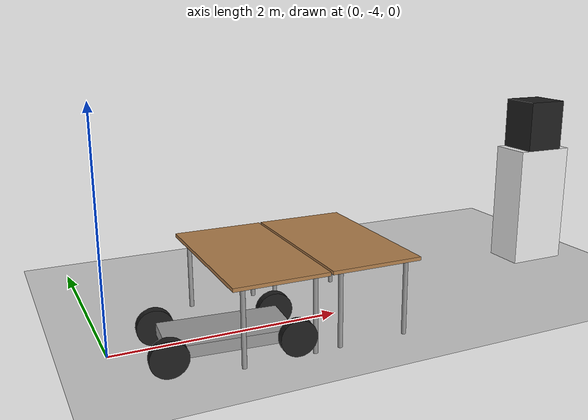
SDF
<sdf version="1.6">
 <world name="default">
  <model name="ground_plane">
   <static>1</static>
   <link name="link">
    <collision name="collision">
     <geometry><plane><normal>0 0 1</normal><size>100 100</size></plane></geometry>
     <surface>
      <contact><collide_bitmask>65535</collide_bitmask></contact>
      <friction><ode><mu>100</mu><mu2>50</mu2></ode></friction>
     </surface>
    </collision>
    <visual name="visual">
     <cast_shadows>0</cast_shadows>
     <geometry><plane><normal>0 0 1</normal><size>100 100</size></plane></geometry>
     <material>
      <script><uri>file://media/materials/scripts/gazebo.material</uri><name>Gazebo/Grey</name></script>
     </material>
    </visual>
   </link>
  </model>
  <model name="table_3">
   <link name="link">
    <pose>0 0 0 0 -0 1.57</pose>
    <visual name="visual1">
     <pose>0 0 0.67 0 -0 0</pose>
     <geometry><box><size>1.5 0.8 0.03</size></box></geometry>
     <material>
      <script><uri>file://media/materials/scripts/gazebo.material</uri><name>Gazebo/Wood</name></script>
     </material>
    </visual>
    <visual name="front_left_leg">
     <pose>0.68 0.3 0.335 0 -0 0</pose>
     <geometry><cylinder><radius>0.02</radius><length>0.67</length></cylinder></geometry>
     <material>
      <script><uri>file://media/materials/scripts/gazebo.material</uri><name>Gazebo/Grey</name></script>
     </material>
    </visual>
    <visual name="front_right_leg">
     <pose>0.68 -0.3 0.335 0 -0 0</pose>
     <geometry><cylinder><radius>0.02</radius><length>0.67</length></cylinder></geometry>
     <material>
      <script><uri>file://media/materials/scripts/gazebo.material</uri><name>Gazebo/Grey</name></script>
     </material>
    </visual>
    <visual name="back_right_leg">
     <pose>-0.68 -0.3 0.335 0 -0 0</pose>
     <geometry><cylinder><radius>0.02</radius><length>0.67</length></cylinder></geometry>
     <material>
      <script><uri>file://media/materials/scripts/gazebo.material</uri><name>Gazebo/Grey</name></script>
     </material>
    </visual>
    <visual name="back_left_leg">
     <pose>-0.68 0.3 0.335 0 -0 0</pose>
     <geometry><cylinder><radius>0.02</radius><length>0.67</length></cylinder></geometry>
     <material>
      <script><uri>file://media/materials/scripts/gazebo.material</uri><name>Gazebo/Grey</name></script>
     </material>
    </visual>
    <collision name="surface">
     <pose>0 0 0.67 0 -0 0</pose>
     <geometry><box><size>1.5 0.8 0.03</size></box></geometry>
     <surface>
      <friction>
       <ode><mu>0.6</mu><mu2>0.6</mu2><fdir1>0 0 0</fdir1><slip1>0</slip1><slip2>0</slip2></ode>
       <torsional>
        <coefficient>1</coefficient>
        <patch_radius>0</patch_radius>
        <surface_radius>0</surface_radius>
        <use_patch_radius>1</use_patch_radius>
        <ode><slip>0</slip></ode>
       </torsional>
      </friction>
      <bounce><restitution_coefficient>0</restitution_coefficient><threshold>1e+06</threshold></bounce>
      <contact>
       <collide_without_contact>0</collide_without_contact>
       <collide_without_contact_bitmask>1</collide_without_contact_bitmask>
       <collide_bitmask>1</collide_bitmask>
       <ode>
        <soft_cfm>0</soft_cfm>
        <soft_erp>0.2</soft_erp>
        <kp>1e+13</kp>
        <kd>1</kd>
        <max_vel>0.01</max_vel>
        <min_depth>0</min_depth>
       </ode>
       <bullet>
        <split_impulse>1</split_impulse>
        <split_impulse_penetration_threshold>-0.01</split_impulse_penetration_threshold>
        <soft_cfm>0</soft_cfm>
        <soft_erp>0.2</soft_erp>
        <kp>1e+13</kp>
        <kd>1</kd>
       </bullet>
      </contact>
     </surface>
    </collision>
    <collision name="front_left_leg">
     <pose>0.68 0.3 0.335 0 -0 0</pose>
     <geometry><cylinder><radius>0.02</radius><length>0.67</length></cylinder></geometry>
     <surface>
      <friction>
       <ode><mu>1</mu><mu2>1</mu2><fdir1>0 0 0</fdir1><slip1>0</slip1><slip2>0</slip2></ode>
       <torsional>
        <coefficient>1</coefficient>
        <patch_radius>0</patch_radius>
        <surface_radius>0</surface_radius>
        <use_patch_radius>1</use_patch_radius>
        <ode><slip>0</slip></ode>
       </torsional>
      </friction>
      <bounce><restitution_coefficient>0</restitution_coefficient><threshold>1e+06</threshold></bounce>
      <contact>
       <collide_without_contact>0</collide_without_contact>
       <collide_without_contact_bitmask>1</collide_without_contact_bitmask>
       <collide_bitmask>1</collide_bitmask>
       <ode>
        <soft_cfm>0</soft_cfm>
        <soft_erp>0.2</soft_erp>
        <kp>1e+13</kp>
        <kd>1</kd>
        <max_vel>0.01</max_vel>
        <min_depth>0</min_depth>
       </ode>
       <bullet>
        <split_impulse>1</split_impulse>
        <split_impulse_penetration_threshold>-0.01</split_impulse_penetration_threshold>
        <soft_cfm>0</soft_cfm>
        <soft_erp>0.2</soft_erp>
        <kp>1e+13</kp>
        <kd>1</kd>
       </bullet>
      </contact>
     </surface>
    </collision>
    <collision name="front_right_leg">
     <pose>0.68 -0.3 0.335 0 -0 0</pose>
     <geometry><cylinder><radius>0.02</radius><length>0.67</length></cylinder></geometry>
     <surface>
      <friction>
       <ode><mu>1</mu><mu2>1</mu2><fdir1>0 0 0</fdir1><slip1>0</slip1><slip2>0</slip2></ode>
       <torsional>
        <coefficient>1</coefficient>
        <patch_radius>0</patch_radius>
        <surface_radius>0</surface_radius>
        <use_patch_radius>1</use_patch_radius>
        <ode><slip>0</slip></ode>
       </torsional>
      </friction>
      <bounce><restitution_coefficient>0</restitution_coefficient><threshold>1e+06</threshold></bounce>
      <contact>
       <collide_without_contact>0</collide_without_contact>
       <collide_without_contact_bitmask>1</collide_without_contact_bitmask>
       <collide_bitmask>1</collide_bitmask>
       <ode>
        <soft_cfm>0</soft_cfm>
        <soft_erp>0.2</soft_erp>
        <kp>1e+13</kp>
        <kd>1</kd>
        <max_vel>0.01</max_vel>
        <min_depth>0</min_depth>
       </ode>
       <bullet>
        <split_impulse>1</split_impulse>
        <split_impulse_penetration_threshold>-0.01</split_impulse_penetration_threshold>
        <soft_cfm>0</soft_cfm>
        <soft_erp>0.2</soft_erp>
        <kp>1e+13</kp>
        <kd>1</kd>
       </bullet>
      </contact>
     </surface>
    </collision>
    <collision name="back_right_leg">
     <pose>-0.68 -0.3 0.335 0 -0 0</pose>
     <geometry><cylinder><radius>0.02</radius><length>0.67</length></cylinder></geometry>
     <surface>
      <friction>
       <ode><mu>1</mu><mu2>1</mu2><fdir1>0 0 0</fdir1><slip1>0</slip1><slip2>0</slip2></ode>
       <torsional>
        <coefficient>1</coefficient>
        <patch_radius>0</patch_radius>
        <surface_radius>0</surface_radius>
        <use_patch_radius>1</use_patch_radius>
        <ode><slip>0</slip></ode>
       </torsional>
      </friction>
      <bounce><restitution_coefficient>0</restitution_coefficient><threshold>1e+06</threshold></bounce>
      <contact>
       <collide_without_contact>0</collide_without_contact>
       <collide_without_contact_bitmask>1</collide_without_contact_bitmask>
       <collide_bitmask>1</collide_bitmask>
       <ode>
        <soft_cfm>0</soft_cfm>
        <soft_erp>0.2</soft_erp>
        <kp>1e+13</kp>
        <kd>1</kd>
        <max_vel>0.01</max_vel>
        <min_depth>0</min_depth>
       </ode>
       <bullet>
        <split_impulse>1</split_impulse>
        <split_impulse_penetration_threshold>-0.01</split_impulse_penetration_threshold>
        <soft_cfm>0</soft_cfm>
        <soft_erp>0.2</soft_erp>
        <kp>1e+13</kp>
        <kd>1</kd>
       </bullet>
      </contact>
     </surface>
    </collision>
    <collision name="back_left_leg">
     <pose>-0.68 0.3 0.335 0 -0 0</pose>
     <geometry><cylinder><radius>0.02</radius><length>0.67</length></cylinder></geometry>
     <surface>
      <friction>
       <ode><mu>1</mu><mu2>1</mu2><fdir1>0 0 0</fdir1><slip1>0</slip1><slip2>0</slip2></ode>
       <torsional>
        <coefficient>1</coefficient>
        <patch_radius>0</patch_radius>
        <surface_radius>0</surface_radius>
        <use_patch_radius>1</use_patch_radius>
        <ode><slip>0</slip></ode>
       </torsional>
      </friction>
      <bounce><restitution_coefficient>0</restitution_coefficient><threshold>1e+06</threshold></bounce>
      <contact>
       <collide_without_contact>0</collide_without_contact>
       <collide_without_contact_bitmask>1</collide_without_contact_bitmask>
       <collide_bitmask>1</collide_bitmask>
       <ode>
        <soft_cfm>0</soft_cfm>
        <soft_erp>0.2</soft_erp>
        <kp>1e+13</kp>
        <kd>1</kd>
        <max_vel>0.01</max_vel>
        <min_depth>0</min_depth>
       </ode>
       <bullet>
        <split_impulse>1</split_impulse>
        <split_impulse_penetration_threshold>-0.01</split_impulse_penetration_threshold>
        <soft_cfm>0</soft_cfm>
        <soft_erp>0.2</soft_erp>
        <kp>1e+13</kp>
        <kd>1</kd>
       </bullet>
      </contact>
     </surface>
    </collision>
   </link>
   <static>1</static>
   <pose>1.20778 -3.96105 0 0 -0 0</pose>
  </model>
  <model name="table_4">
   <link name="link">
    <pose>0 0 0 0 -0 1.57</pose>
    <visual name="visual1">
     <pose>0 0 0.67 0 -0 0</pose>
     <geometry><box><size>1.5 0.8 0.03</size></box></geometry>
     <material>
      <script><uri>file://media/materials/scripts/gazebo.material</uri><name>Gazebo/Wood</name></script>
     </material>
    </visual>
    <visual name="front_left_leg">
     <pose>0.68 0.3 0.335 0 -0 0</pose>
     <geometry><cylinder><radius>0.02</radius><length>0.67</length></cylinder></geometry>
     <material>
      <script><uri>file://media/materials/scripts/gazebo.material</uri><name>Gazebo/Grey</name></script>
     </material>
    </visual>
    <visual name="front_right_leg">
     <pose>0.68 -0.3 0.335 0 -0 0</pose>
     <geometry><cylinder><radius>0.02</radius><length>0.67</length></cylinder></geometry>
     <material>
      <script><uri>file://media/materials/scripts/gazebo.material</uri><name>Gazebo/Grey</name></script>
     </material>
    </visual>
    <visual name="back_right_leg">
     <pose>-0.68 -0.3 0.335 0 -0 0</pose>
     <geometry><cylinder><radius>0.02</radius><length>0.67</length></cylinder></geometry>
     <material>
      <script><uri>file://media/materials/scripts/gazebo.material</uri><name>Gazebo/Grey</name></script>
     </material>
    </visual>
    <visual name="back_left_leg">
     <pose>-0.68 0.3 0.335 0 -0 0</pose>
     <geometry><cylinder><radius>0.02</radius><length>0.67</length></cylinder></geometry>
     <material>
      <script><uri>file://media/materials/scripts/gazebo.material</uri><name>Gazebo/Grey</name></script>
     </material>
    </visual>
    <collision name="surface">
     <pose>0 0 0.67 0 -0 0</pose>
     <geometry><box><size>1.5 0.8 0.03</size></box></geometry>
     <surface>
      <friction>
       <ode><mu>0.6</mu><mu2>0.6</mu2><fdir1>0 0 0</fdir1><slip1>0</slip1><slip2>0</slip2></ode>
       <torsional>
        <coefficient>1</coefficient>
        <patch_radius>0</patch_radius>
        <surface_radius>0</surface_radius>
        <use_patch_radius>1</use_patch_radius>
        <ode><slip>0</slip></ode>
       </torsional>
      </friction>
      <bounce><restitution_coefficient>0</restitution_coefficient><threshold>1e+06</threshold></bounce>
      <contact>
       <collide_without_contact>0</collide_without_contact>
       <collide_without_contact_bitmask>1</collide_without_contact_bitmask>
       <collide_bitmask>1</collide_bitmask>
       <ode>
        <soft_cfm>0</soft_cfm>
        <soft_erp>0.2</soft_erp>
        <kp>1e+13</kp>
        <kd>1</kd>
        <max_vel>0.01</max_vel>
        <min_depth>0</min_depth>
       </ode>
       <bullet>
        <split_impulse>1</split_impulse>
        <split_impulse_penetration_threshold>-0.01</split_impulse_penetration_threshold>
        <soft_cfm>0</soft_cfm>
        <soft_erp>0.2</soft_erp>
        <kp>1e+13</kp>
        <kd>1</kd>
       </bullet>
      </contact>
     </surface>
    </collision>
    <collision name="front_left_leg">
     <pose>0.68 0.3 0.335 0 -0 0</pose>
     <geometry><cylinder><radius>0.02</radius><length>0.67</length></cylinder></geometry>
     <surface>
      <friction>
       <ode><mu>1</mu><mu2>1</mu2><fdir1>0 0 0</fdir1><slip1>0</slip1><slip2>0</slip2></ode>
       <torsional>
        <coefficient>1</coefficient>
        <patch_radius>0</patch_radius>
        <surface_radius>0</surface_radius>
        <use_patch_radius>1</use_patch_radius>
        <ode><slip>0</slip></ode>
       </torsional>
      </friction>
      <bounce><restitution_coefficient>0</restitution_coefficient><threshold>1e+06</threshold></bounce>
      <contact>
       <collide_without_contact>0</collide_without_contact>
       <collide_without_contact_bitmask>1</collide_without_contact_bitmask>
       <collide_bitmask>1</collide_bitmask>
       <ode>
        <soft_cfm>0</soft_cfm>
        <soft_erp>0.2</soft_erp>
        <kp>1e+13</kp>
        <kd>1</kd>
        <max_vel>0.01</max_vel>
        <min_depth>0</min_depth>
       </ode>
       <bullet>
        <split_impulse>1</split_impulse>
        <split_impulse_penetration_threshold>-0.01</split_impulse_penetration_threshold>
        <soft_cfm>0</soft_cfm>
        <soft_erp>0.2</soft_erp>
        <kp>1e+13</kp>
        <kd>1</kd>
       </bullet>
      </contact>
     </surface>
    </collision>
    <collision name="front_right_leg">
     <pose>0.68 -0.3 0.335 0 -0 0</pose>
     <geometry><cylinder><radius>0.02</radius><length>0.67</length></cylinder></geometry>
     <surface>
      <friction>
       <ode><mu>1</mu><mu2>1</mu2><fdir1>0 0 0</fdir1><slip1>0</slip1><slip2>0</slip2></ode>
       <torsional>
        <coefficient>1</coefficient>
        <patch_radius>0</patch_radius>
        <surface_radius>0</surface_radius>
        <use_patch_radius>1</use_patch_radius>
        <ode><slip>0</slip></ode>
       </torsional>
      </friction>
      <bounce><restitution_coefficient>0</restitution_coefficient><threshold>1e+06</threshold></bounce>
      <contact>
       <collide_without_contact>0</collide_without_contact>
       <collide_without_contact_bitmask>1</collide_without_contact_bitmask>
       <collide_bitmask>1</collide_bitmask>
       <ode>
        <soft_cfm>0</soft_cfm>
        <soft_erp>0.2</soft_erp>
        <kp>1e+13</kp>
        <kd>1</kd>
        <max_vel>0.01</max_vel>
        <min_depth>0</min_depth>
       </ode>
       <bullet>
        <split_impulse>1</split_impulse>
        <split_impulse_penetration_threshold>-0.01</split_impulse_penetration_threshold>
        <soft_cfm>0</soft_cfm>
        <soft_erp>0.2</soft_erp>
        <kp>1e+13</kp>
        <kd>1</kd>
       </bullet>
      </contact>
     </surface>
    </collision>
    <collision name="back_right_leg">
     <pose>-0.68 -0.3 0.335 0 -0 0</pose>
     <geometry><cylinder><radius>0.02</radius><length>0.67</length></cylinder></geometry>
     <surface>
      <friction>
       <ode><mu>1</mu><mu2>1</mu2><fdir1>0 0 0</fdir1><slip1>0</slip1><slip2>0</slip2></ode>
       <torsional>
        <coefficient>1</coefficient>
        <patch_radius>0</patch_radius>
        <surface_radius>0</surface_radius>
        <use_patch_radius>1</use_patch_radius>
        <ode><slip>0</slip></ode>
       </torsional>
      </friction>
      <bounce><restitution_coefficient>0</restitution_coefficient><threshold>1e+06</threshold></bounce>
      <contact>
       <collide_without_contact>0</collide_without_contact>
       <collide_without_contact_bitmask>1</collide_without_contact_bitmask>
       <collide_bitmask>1</collide_bitmask>
       <ode>
        <soft_cfm>0</soft_cfm>
        <soft_erp>0.2</soft_erp>
        <kp>1e+13</kp>
        <kd>1</kd>
        <max_vel>0.01</max_vel>
        <min_depth>0</min_depth>
       </ode>
       <bullet>
        <split_impulse>1</split_impulse>
        <split_impulse_penetration_threshold>-0.01</split_impulse_penetration_threshold>
        <soft_cfm>0</soft_cfm>
        <soft_erp>0.2</soft_erp>
        <kp>1e+13</kp>
        <kd>1</kd>
       </bullet>
      </contact>
     </surface>
    </collision>
    <collision name="back_left_leg">
     <pose>-0.68 0.3 0.335 0 -0 0</pose>
     <geometry><cylinder><radius>0.02</radius><length>0.67</length></cylinder></geometry>
     <surface>
      <friction>
       <ode><mu>1</mu><mu2>1</mu2><fdir1>0 0 0</fdir1><slip1>0</slip1><slip2>0</slip2></ode>
       <torsional>
        <coefficient>1</coefficient>
        <patch_radius>0</patch_radius>
        <surface_radius>0</surface_radius>
        <use_patch_radius>1</use_patch_radius>
        <ode><slip>0</slip></ode>
       </torsional>
      </friction>
      <bounce><restitution_coefficient>0</restitution_coefficient><threshold>1e+06</threshold></bounce>
      <contact>
       <collide_without_contact>0</collide_without_contact>
       <collide_without_contact_bitmask>1</collide_without_contact_bitmask>
       <collide_bitmask>1</collide_bitmask>
       <ode>
        <soft_cfm>0</soft_cfm>
        <soft_erp>0.2</soft_erp>
        <kp>1e+13</kp>
        <kd>1</kd>
        <max_vel>0.01</max_vel>
        <min_depth>0</min_depth>
       </ode>
       <bullet>
        <split_impulse>1</split_impulse>
        <split_impulse_penetration_threshold>-0.01</split_impulse_penetration_threshold>
        <soft_cfm>0</soft_cfm>
        <soft_erp>0.2</soft_erp>
        <kp>1e+13</kp>
        <kd>1</kd>
       </bullet>
      </contact>
     </surface>
    </collision>
   </link>
   <static>1</static>
   <pose>2.03267 -3.95472 0 0 -0 0</pose>
  </model>
  <model name="guizi_1_1">
   <link name="link">
    <inertial>
     <mass>1</mass>
     <inertia>
      <ixx>0.166667</ixx>
      <ixy>0</ixy>
      <ixz>0</ixz>
      <iyy>0.166667</iyy>
      <iyz>0</iyz>
      <izz>0.166667</izz>
     </inertia>
    </inertial>
    <visual name="visual">
     <geometry><box><size>0.4 0.6 1.2</size></box></geometry>
     <material>
      <script><name>Gazebo/White</name><uri>file://media/materials/scripts/gazebo.material</uri></script>
     </material>
     <pose>0 0 0.6 0 -0 1.57</pose>
    </visual>
    <collision name="collision">
     <pose>0 0 0.6 0 -0 1.57</pose>
     <geometry><box><size>0.4 0.6 1.2</size></box></geometry>
     <surface>
      <friction>
       <ode><mu>1</mu><mu2>1</mu2><fdir1>0 0 0</fdir1><slip1>0</slip1><slip2>0</slip2></ode>
       <torsional>
        <coefficient>1</coefficient>
        <patch_radius>0</patch_radius>
        <surface_radius>0</surface_radius>
        <use_patch_radius>1</use_patch_radius>
        <ode><slip>0</slip></ode>
       </torsional>
      </friction>
      <bounce><restitution_coefficient>0</restitution_coefficient><threshold>1e+06</threshold></bounce>
      <contact>
       <collide_without_contact>0</collide_without_contact>
       <collide_without_contact_bitmask>1</collide_without_contact_bitmask>
       <collide_bitmask>1</collide_bitmask>
       <ode>
        <soft_cfm>0</soft_cfm>
        <soft_erp>0.2</soft_erp>
        <kp>1e+13</kp>
        <kd>1</kd>
        <max_vel>0.01</max_vel>
        <min_depth>0</min_depth>
       </ode>
       <bullet>
        <split_impulse>1</split_impulse>
        <split_impulse_penetration_threshold>-0.01</split_impulse_penetration_threshold>
        <soft_cfm>0</soft_cfm>
        <soft_erp>0.2</soft_erp>
        <kp>1e+13</kp>
        <kd>1</kd>
       </bullet>
      </contact>
     </surface>
    </collision>
   </link>
   <static>0</static>
   <pose>4.64781 -3.45604 -0 0 -0 -0.000414</pose>
  </model>
  <model name="guizi_1">
   <link name="link">
    <inertial>
     <mass>1</mass>
     <inertia>
      <ixx>0.166667</ixx>
      <ixy>0</ixy>
      <ixz>0</ixz>
      <iyy>0.166667</iyy>
      <iyz>0</iyz>
      <izz>0.166667</izz>
     </inertia>
    </inertial>
    <visual name="visual">
     <geometry><box><size>0.4 0.4 0.5</size></box></geometry>
     <material>
      <script><name>Gazebo/Black</name><uri>file://media/materials/scripts/gazebo.material</uri></script>
     </material>
     <pose>0 0 1.45 0 -0 1.57</pose>
    </visual>
    <collision name="collision">
     <pose>0 0 1.45 0 -0 1.57</pose>
     <geometry><box><size>0.4 0.4 0.5</size></box></geometry>
     <surface>
      <friction>
       <ode><mu>1</mu><mu2>1</mu2><fdir1>0 0 0</fdir1><slip1>0</slip1><slip2>0</slip2></ode>
       <torsional>
        <coefficient>1</coefficient>
        <patch_radius>0</patch_radius>
        <surface_radius>0</surface_radius>
        <use_patch_radius>1</use_patch_radius>
        <ode><slip>0</slip></ode>
       </torsional>
      </friction>
      <bounce><restitution_coefficient>0</restitution_coefficient><threshold>1e+06</threshold></bounce>
      <contact>
       <collide_without_contact>0</collide_without_contact>
       <collide_without_contact_bitmask>1</collide_without_contact_bitmask>
       <collide_bitmask>1</collide_bitmask>
       <ode>
        <soft_cfm>0</soft_cfm>
        <soft_erp>0.2</soft_erp>
        <kp>1e+13</kp>
        <kd>1</kd>
        <max_vel>0.01</max_vel>
        <min_depth>0</min_depth>
       </ode>
       <bullet>
        <split_impulse>1</split_impulse>
        <split_impulse_penetration_threshold>-0.01</split_impulse_penetration_threshold>
        <soft_cfm>0</soft_cfm>
        <soft_erp>0.2</soft_erp>
        <kp>1e+13</kp>
        <kd>1</kd>
       </bullet>
      </contact>
     </surface>
    </collision>
   </link>
   <static>0</static>
   <pose>4.63387 -3.45985 2e-06 -6e-06 5e-06 -0.016774</pose>
  </model>
  <model name="cart_soft_suspension">
   <link name="chassis">
    <pose>0 0 0.15 0 -0 0</pose>
    <inertial>
     <pose>0.1 0 0 0 -0 0</pose>
     <mass>10</mass>
     <inertia>
      <ixx>0.216667</ixx>
      <iyy>0.841667</iyy>
      <izz>1.04167</izz>
      <ixy>0</ixy>
      <ixz>0</ixz>
      <iyz>0</iyz>
     </inertia>
    </inertial>
    <collision name="collision"><geometry><box><size>1 0.5 0.1</size></box></geometry></collision>
    <visual name="visual">
     <geometry><box><size>1 0.5 0.1</size></box></geometry>
     <material>
      <script><uri>file://media/materials/scripts/gazebo.material</uri><name>Gazebo/Grey</name></script>
     </material>
    </visual>
   </link>
   <link name="susp_front_right">
    <pose>0.5 -0.298 0.15 0 -0 0</pose>
    <inertial>
     <mass>0.5</mass>
     <inertia>
      <ixx>0.000208333</ixx>
      <iyy>0.000208333</iyy>
      <izz>0.000208333</izz>
      <ixy>0</ixy>
      <ixz>0</ixz>
      <iyz>0</iyz>
     </inertia>
    </inertial>
    <collision name="collision"><geometry><box><size>0.05 0.05 0.05</size></box></geometry></collision>
    <visual name="visual">
     <geometry><box><size>0.05 0.05 0.05</size></box></geometry>
     <material>
      <script><uri>file://media/materials/scripts/gazebo.material</uri><name>Gazebo/Black</name></script>
     </material>
    </visual>
   </link>
   <joint name="susp_front_right_prismatic" type="prismatic">
    <parent>chassis</parent>
    <child>susp_front_right</child>
    <axis>
     <xyz>0 0 -1</xyz>
     <limit><lower>-0.0375</lower><upper>0.0375</upper></limit>
     <dynamics>
      <damping>100</damping>
      <spring_stiffness>2500</spring_stiffness>
      <spring_reference>0.05</spring_reference>
     </dynamics>
     <use_parent_model_frame>0</use_parent_model_frame>
    </axis>
    <physics>
     <ode><implicit_spring_damper>1</implicit_spring_damper><limit><cfm>0</cfm><erp>0.2</erp></limit></ode>
    </physics>
   </joint>
   <link name="wheel_front_right">
    <pose>0.5 -0.298 0.15 -1.5708 0 0</pose>
    <inertial>
     <mass>0.5</mass>
     <inertia>
      <ixx>0.00307917</ixx>
      <iyy>0.00307917</iyy>
      <izz>0.005625</izz>
      <ixy>0</ixy>
      <ixz>0</ixz>
      <iyz>0</iyz>
     </inertia>
    </inertial>
    <collision name="collision">
     <geometry><cylinder><radius>0.15</radius><length>0.08</length></cylinder></geometry>
    </collision>
    <visual name="visual">
     <geometry><cylinder><radius>0.15</radius><length>0.08</length></cylinder></geometry>
     <material>
      <script><uri>file://media/materials/scripts/gazebo.material</uri><name>Gazebo/Black</name></script>
     </material>
    </visual>
   </link>
   <joint name="wheel_front_right_spin" type="revolute">
    <parent>susp_front_right</parent>
    <child>wheel_front_right</child>
    <axis>
     <xyz>0 0 1</xyz>
     <use_parent_model_frame>0</use_parent_model_frame>
     <limit><lower>-1e+16</lower><upper>1e+16</upper></limit>
     <dynamics><spring_reference>0</spring_reference><spring_stiffness>0</spring_stiffness></dynamics>
    </axis>
   </joint>
   <link name="susp_front_left">
    <pose>0.5 0.298 0.15 0 -0 0</pose>
    <inertial>
     <mass>0.5</mass>
     <inertia>
      <ixx>0.000208333</ixx>
      <iyy>0.000208333</iyy>
      <izz>0.000208333</izz>
      <ixy>0</ixy>
      <ixz>0</ixz>
      <iyz>0</iyz>
     </inertia>
    </inertial>
    <collision name="collision"><geometry><box><size>0.05 0.05 0.05</size></box></geometry></collision>
    <visual name="visual">
     <geometry><box><size>0.05 0.05 0.05</size></box></geometry>
     <material>
      <script><uri>file://media/materials/scripts/gazebo.material</uri><name>Gazebo/Black</name></script>
     </material>
    </visual>
   </link>
   <joint name="susp_front_left_prismatic" type="prismatic">
    <parent>chassis</parent>
    <child>susp_front_left</child>
    <axis>
     <xyz>0 0 -1</xyz>
     <limit><lower>-0.0375</lower><upper>0.0375</upper></limit>
     <dynamics>
      <damping>100</damping>
      <spring_stiffness>2500</spring_stiffness>
      <spring_reference>0.05</spring_reference>
     </dynamics>
     <use_parent_model_frame>0</use_parent_model_frame>
    </axis>
    <physics>
     <ode><implicit_spring_damper>1</implicit_spring_damper><limit><cfm>0</cfm><erp>0.2</erp></limit></ode>
    </physics>
   </joint>
   <link name="wheel_front_left">
    <pose>0.5 0.298 0.15 -1.5708 0 0</pose>
    <inertial>
     <mass>0.5</mass>
     <inertia>
      <ixx>0.00307917</ixx>
      <iyy>0.00307917</iyy>
      <izz>0.005625</izz>
      <ixy>0</ixy>
      <ixz>0</ixz>
      <iyz>0</iyz>
     </inertia>
    </inertial>
    <collision name="collision">
     <geometry><cylinder><radius>0.15</radius><length>0.08</length></cylinder></geometry>
    </collision>
    <visual name="visual">
     <geometry><cylinder><radius>0.15</radius><length>0.08</length></cylinder></geometry>
     <material>
      <script><uri>file://media/materials/scripts/gazebo.material</uri><name>Gazebo/Black</name></script>
     </material>
    </visual>
   </link>
   <joint name="wheel_front_left_spin" type="revolute">
    <parent>susp_front_left</parent>
    <child>wheel_front_left</child>
    <axis>
     <xyz>0 0 1</xyz>
     <use_parent_model_frame>0</use_parent_model_frame>
     <limit><lower>-1e+16</lower><upper>1e+16</upper></limit>
     <dynamics><spring_reference>0</spring_reference><spring_stiffness>0</spring_stiffness></dynamics>
    </axis>
   </joint>
   <link name="susp_rear_right">
    <pose>-0.5 -0.298 0.15 0 -0 0</pose>
    <inertial>
     <mass>0.5</mass>
     <inertia>
      <ixx>0.000208333</ixx>
      <iyy>0.000208333</iyy>
      <izz>0.000208333</izz>
      <ixy>0</ixy>
      <ixz>0</ixz>
      <iyz>0</iyz>
     </inertia>
    </inertial>
    <collision name="collision"><geometry><box><size>0.05 0.05 0.05</size></box></geometry></collision>
    <visual name="visual">
     <geometry><box><size>0.05 0.05 0.05</size></box></geometry>
     <material>
      <script><uri>file://media/materials/scripts/gazebo.material</uri><name>Gazebo/Black</name></script>
     </material>
    </visual>
   </link>
   <joint name="susp_rear_right_prismatic" type="prismatic">
    <parent>chassis</parent>
    <child>susp_rear_right</child>
    <axis>
     <xyz>0 0 -1</xyz>
     <limit><lower>-0.0375</lower><upper>0.0375</upper></limit>
     <dynamics>
      <damping>100</damping>
      <spring_stiffness>2500</spring_stiffness>
      <spring_reference>0.05</spring_reference>
     </dynamics>
     <use_parent_model_frame>0</use_parent_model_frame>
    </axis>
    <physics>
     <ode><implicit_spring_damper>1</implicit_spring_damper><limit><cfm>0</cfm><erp>0.2</erp></limit></ode>
    </physics>
   </joint>
   <link name="wheel_rear_right">
    <pose>-0.5 -0.298 0.15 -1.5708 0 0</pose>
    <inertial>
     <mass>0.5</mass>
     <inertia>
      <ixx>0.00307917</ixx>
      <iyy>0.00307917</iyy>
      <izz>0.005625</izz>
      <ixy>0</ixy>
      <ixz>0</ixz>
      <iyz>0</iyz>
     </inertia>
    </inertial>
    <collision name="collision">
     <geometry><cylinder><radius>0.15</radius><length>0.08</length></cylinder></geometry>
    </collision>
    <visual name="visual">
     <geometry><cylinder><radius>0.15</radius><length>0.08</length></cylinder></geometry>
     <material>
      <script><uri>file://media/materials/scripts/gazebo.material</uri><name>Gazebo/Black</name></script>
     </material>
    </visual>
   </link>
   <joint name="wheel_rear_right_spin" type="revolute">
    <parent>susp_rear_right</parent>
    <child>wheel_rear_right</child>
    <axis>
     <xyz>0 0 1</xyz>
     <use_parent_model_frame>0</use_parent_model_frame>
     <limit><lower>-1e+16</lower><upper>1e+16</upper></limit>
     <dynamics><spring_reference>0</spring_reference><spring_stiffness>0</spring_stiffness></dynamics>
    </axis>
   </joint>
   <link name="susp_rear_left">
    <pose>-0.5 0.298 0.15 0 -0 0</pose>
    <inertial>
     <mass>0.5</mass>
     <inertia>
      <ixx>0.000208333</ixx>
      <iyy>0.000208333</iyy>
      <izz>0.000208333</izz>
      <ixy>0</ixy>
      <ixz>0</ixz>
      <iyz>0</iyz>
     </inertia>
    </inertial>
    <collision name="collision"><geometry><box><size>0.05 0.05 0.05</size></box></geometry></collision>
    <visual name="visual">
     <geometry><box><size>0.05 0.05 0.05</size></box></geometry>
     <material>
      <script><uri>file://media/materials/scripts/gazebo.material</uri><name>Gazebo/Black</name></script>
     </material>
    </visual>
   </link>
   <joint name="susp_rear_left_prismatic" type="prismatic">
    <parent>chassis</parent>
    <child>susp_rear_left</child>
    <axis>
     <xyz>0 0 -1</xyz>
     <limit><lower>-0.0375</lower><upper>0.0375</upper></limit>
     <dynamics>
      <damping>100</damping>
      <spring_stiffness>2500</spring_stiffness>
      <spring_reference>0.05</spring_reference>
     </dynamics>
     <use_parent_model_frame>0</use_parent_model_frame>
    </axis>
    <physics>
     <ode><implicit_spring_damper>1</implicit_spring_damper><limit><cfm>0</cfm><erp>0.2</erp></limit></ode>
    </physics>
   </joint>
   <link name="wheel_rear_left">
    <pose>-0.5 0.298 0.15 -1.5708 0 0</pose>
    <inertial>
     <mass>0.5</mass>
     <inertia>
      <ixx>0.00307917</ixx>
      <iyy>0.00307917</iyy>
      <izz>0.005625</izz>
      <ixy>0</ixy>
      <ixz>0</ixz>
      <iyz>0</iyz>
     </inertia>
    </inertial>
    <collision name="collision">
     <geometry><cylinder><radius>0.15</radius><length>0.08</length></cylinder></geometry>
    </collision>
    <visual name="visual">
     <geometry><cylinder><radius>0.15</radius><length>0.08</length></cylinder></geometry>
     <material>
      <script><uri>file://media/materials/scripts/gazebo.material</uri><name>Gazebo/Black</name></script>
     </material>
    </visual>
   </link>
   <joint name="wheel_rear_left_spin" type="revolute">
    <parent>susp_rear_left</parent>
    <child>wheel_rear_left</child>
    <axis>
     <xyz>0 0 1</xyz>
     <use_parent_model_frame>0</use_parent_model_frame>
     <limit><lower>-1e+16</lower><upper>1e+16</upper></limit>
     <dynamics><spring_reference>0</spring_reference><spring_stiffness>0</spring_stiffness></dynamics>
    </axis>
   </joint>
   <pose>0.861643 -4.3459 0.037466 -0.00018 -7e-06 -0.080993</pose>
  </model>
 </world>
</sdf>
